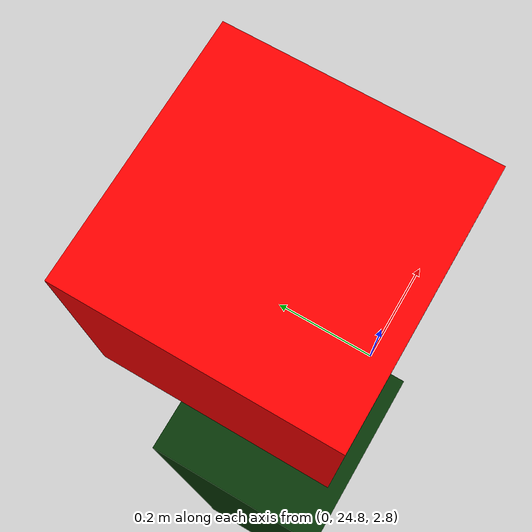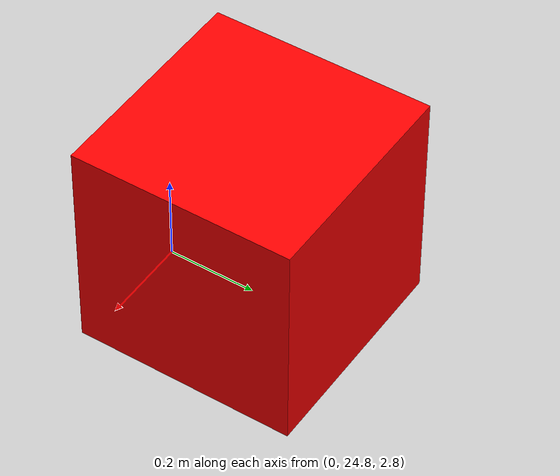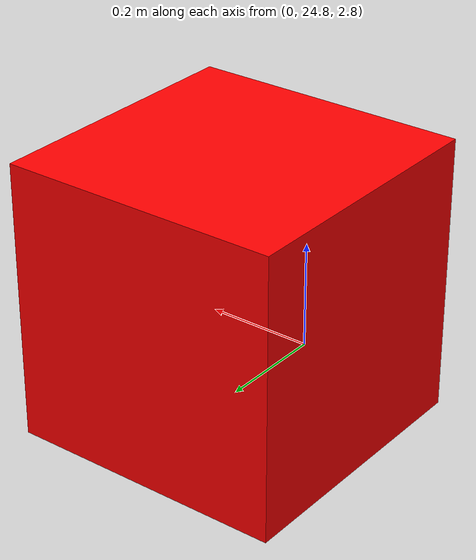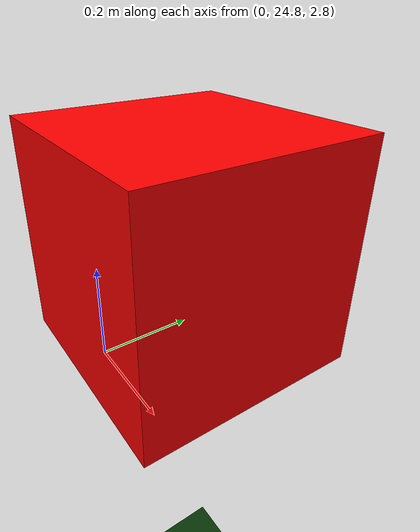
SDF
<?xml version="1.0" ?>
<sdf version="1.11">
  <world name="field">

    <!-- Camera sensor plugin -->

    <physics name="1ms" type="ode">
      <max_step_size>0.001</max_step_size>
      <real_time_factor>1</real_time_factor>
    </physics>

    <gravity>0 0 0</gravity>

    <plugin
      filename="gz-sim-physics-system"
      name="gz::sim::systems::Physics">
    </plugin>

    <plugin
      filename="gz-sim-sensors-system"
      name="gz::sim::systems::Sensors">
      <render_engine>ogre2</render_engine>
    </plugin>
    <plugin
      filename="gz-sim-user-commands-system"
      name="gz::sim::systems::UserCommands">
    </plugin>
    <plugin
      filename="gz-sim-scene-broadcaster-system"
      name="gz::sim::systems::SceneBroadcaster">
    </plugin>

    <!-- Background and lighting -->
    <scene>
      <ambient>1.0 1.0 1.0</ambient>
      <!-- Blue Sky Color -->
      <background>0.557, 0.871, 1</background>
      <grid>false</grid>
    </scene>
    <light type="directional" name="sun">
      <cast_shadows>true</cast_shadows>
      <pose>0 0 10 0 0 0</pose>
      <diffuse>0.8 0.8 0.8 1</diffuse>
      <specular>0.2 0.2 0.2 1</specular>
      <attenuation>
        <range>1000</range>
        <constant>0.9</constant>
        <linear>0.01</linear>
        <quadratic>0.001</quadratic>
      </attenuation>
      <direction>-0.5 0.1 -0.9</direction>
    </light>

    <!-- Field Model -->
    <model name="field">
      <link name="field_link">
        <collision name="collision1">
          <geometry>
            <plane>
              <normal>0 0 1</normal>
            </plane>
          </geometry>
        </collision>

        <visual name="playing_field">
          <geometry>
            <plane>
              <normal>0 0 1</normal>
              <size>30 30</size>
            </plane>
          </geometry>
          <!-- Green Color -->
          <material>
            <ambient>0.129, 0.349, 0.125 1.0</ambient>
            <diffuse>0.129, 0.349, 0.125 1.0</diffuse>
            <specular>0.1 0.1 0.1 1.0</specular>
            <emissive>0 0 0 1</emissive>
          </material>
        </visual>

        <visual name="field_surroundings">
          <pose>0 0 -0.01 0 0 0</pose>
          <geometry>
            <plane>
              <normal>0 0 1</normal>
              <size>3000 3000</size>
            </plane>
          </geometry>
          <!-- Dark Green Color -->
          <material>
            <ambient>0.027, 0.212, 0.024 1.0</ambient>
            <diffuse>0.027, 0.212, 0.024 1.0</diffuse>
            <specular>0.1 0.1 0.1 1.0</specular>
            <emissive>0 0 0 1</emissive>
          </material>
        </visual>
      </link>
    </model>

    <include>
      <uri>model://camera</uri>
      <name>simulation_camera</name>
      <pose>0 25 3 0 0 4.71238898038</pose> <!-- Set location of camera (Currently at midfield, 40m from the center). Z should be 1/2 of stand height-->
    </include>

  </world>
</sdf>

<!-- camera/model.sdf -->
<sdf version="1.11">

  <model name="camera_model">

    <link name="camera_link">
      <pose>0 0 0 0 0 0</pose>
      <visual name="camera_visual">
        <geometry>
          <box>
            <size>0.5 0.5 0.5</size>
          </box>
        </geometry>
        <material>
            <ambient>1, 0, 0 1</ambient>
            <diffuse>1, 0, 0 1</diffuse>
            <specular>1 1 1 1</specular>
            <emissive>0 0 0 1</emissive>
          </material>
      </visual>

      <sensor name="camera_sensor" type="camera">
        <camera>
          <horizontal_fov>1.096</horizontal_fov>
          <image>
              <width>1920</width>
              <height>1080</height>
              <format>R8G8B8</format>
          </image>
          <clip>
            <near>0.1</near>
            <far>100</far>
          </clip>
        </camera>
        <always_on>1</always_on>
        <update_rate>60</update_rate>
        <visualize>true</visualize>
        <topic>/camera_image</topic>
      </sensor>
    </link>

  </model>
  </sdf>
